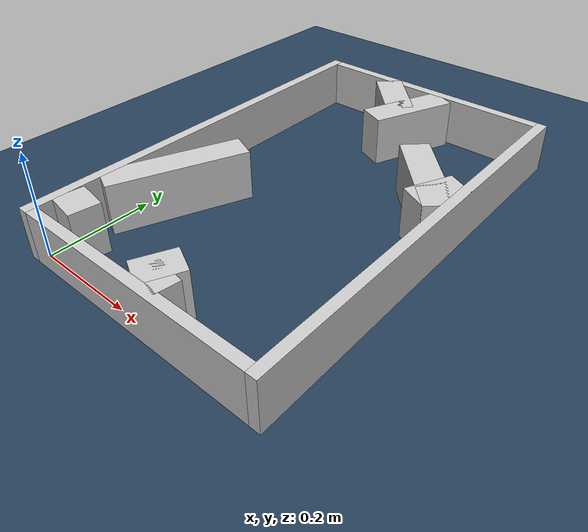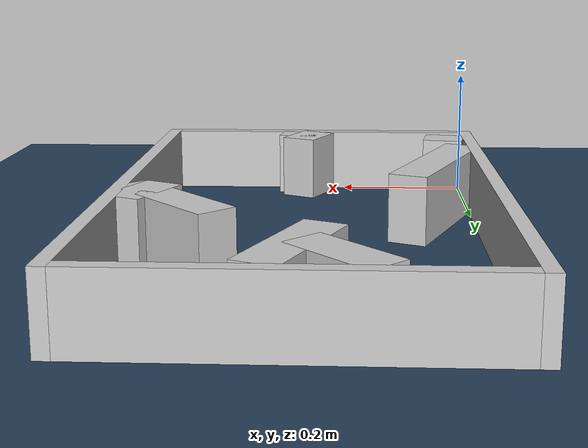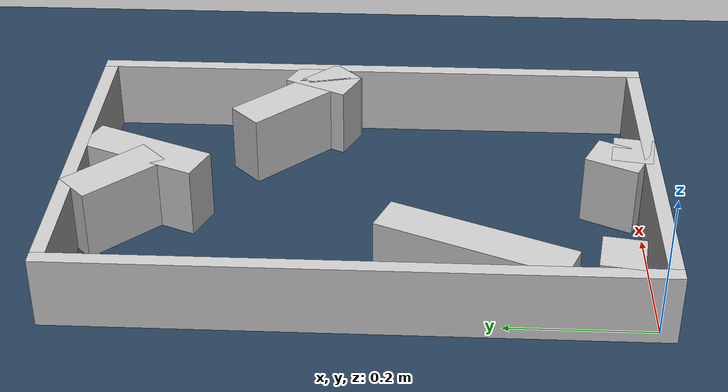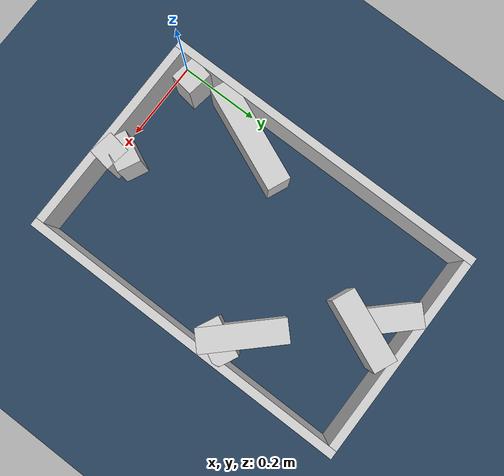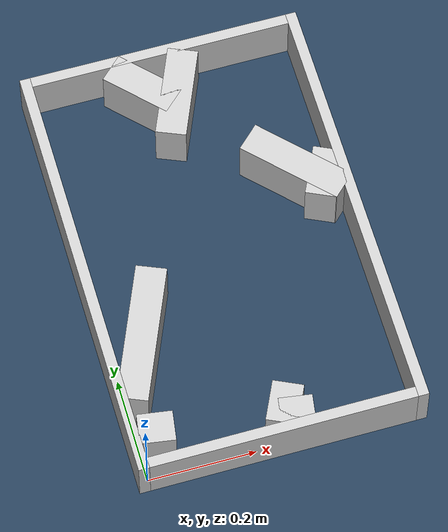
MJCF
<?xml version="1.0" ?>
<mujoco model="generated_real_template">
  <compiler angle="degree"/>
  <option timestep="0.002" integrator="implicitfast" iterations="100" cone="elliptic"/>
  <default>
    <geom density="1"/>
  </default>
  <asset>
    <texture builtin="gradient" height="3072" rgb1="0.3 0.5 0.7" rgb2="0 0 0" type="skybox" width="512"/>
    <texture builtin="checker" height="300" mark="edge" markrgb="0.8 0.8 0.8" name="groundplane" rgb1="0.2 0.3 0.4" rgb2="0.1 0.2 0.3" type="2d" width="300"/>
    <material name="groundplane" reflectance="0.2" texrepeat="5 5" texture="groundplane" texuniform="true"/>
  </asset>
  <worldbody>
    <light dir="0 0 -1" directional="true" pos="0 0 1.5"/>
    <geom name="floor" type="plane" condim="4" friction="0.5 0.005 0.001" material="groundplane" size="0 0 0.05"/>
    <body name="walls">
      <geom name="wall_boundary_left" type="box" condim="4" friction="1.0 0.005 0.0001" rgba="0.8 0.8 0.8 1" pos="-0.010000 0.387500 0.050000" euler="0 0 0.000000" size="0.010000 0.407500 0.050000"/>
      <geom name="wall_boundary_right" type="box" condim="4" friction="1.0 0.005 0.0001" rgba="0.8 0.8 0.8 1" pos="0.500000 0.387500 0.050000" euler="0 0 0.000000" size="0.010000 0.407500 0.050000"/>
      <geom name="wall_boundary_bottom" type="box" condim="4" friction="1.0 0.005 0.0001" rgba="0.8 0.8 0.8 1" pos="0.245000 -0.010000 0.050000" euler="0 0 0.000000" size="0.245000 0.010000 0.050000"/>
      <geom name="wall_boundary_top" type="box" condim="4" friction="1.0 0.005 0.0001" rgba="0.8 0.8 0.8 1" pos="0.245000 0.785000 0.050000" euler="0 0 0.000000" size="0.245000 0.010000 0.050000"/>
      <geom name="wall_inner_1_1" type="box" condim="4" friction="1.0 0.005 0.0001" rgba="0.8 0.8 0.8 1" pos="0.195760 0.725979 0.050000" euler="0 0 -46.223580" size="0.067892 0.028500 0.050000"/>
      <geom name="wall_inner_1_2" type="box" condim="4" friction="1.0 0.005 0.0001" rgba="0.8 0.8 0.8 1" pos="0.419547 0.492424 0.050000" euler="0 0 -46.223580" size="0.100996 0.028500 0.050000"/>
      <geom name="wall_inner_2_1" type="box" condim="4" friction="1.0 0.005 0.0001" rgba="0.8 0.8 0.8 1" pos="0.057603 0.235911 0.050000" euler="0 0 66.970386" size="0.131321 0.028500 0.050000"/>
      <geom name="wall_inner_2_2" type="box" condim="4" friction="1.0 0.005 0.0001" rgba="0.8 0.8 0.8 1" pos="0.251850 0.692871 0.050000" euler="0 0 66.970386" size="0.089241 0.028500 0.050000"/>
      <geom name="wall_inner_3_1" type="box" condim="4" friction="1.0 0.005 0.0001" rgba="0.8 0.8 0.8 1" pos="0.463287 0.456909 0.050000" euler="0 0 -115.525638" size="0.048720 0.028500 0.050000"/>
      <geom name="wall_inner_3_2" type="box" condim="4" friction="1.0 0.005 0.0001" rgba="0.8 0.8 0.8 1" pos="0.261756 0.034877 0.050000" euler="0 0 -115.525638" size="0.038650 0.028500 0.050000"/>
      <geom name="wall_inner_4_1" type="box" condim="4" friction="1.0 0.005 0.0001" rgba="0.8 0.8 0.8 1" pos="0.277583 0.012886 0.050000" euler="0 0 171.125697" size="0.030637 0.028500 0.050000"/>
      <geom name="wall_inner_4_2" type="box" condim="4" friction="1.0 0.005 0.0001" rgba="0.8 0.8 0.8 1" pos="0.031836 0.051256 0.050000" euler="0 0 171.125697" size="0.032222 0.028500 0.050000"/>
    </body>
  </worldbody>
</mujoco>
